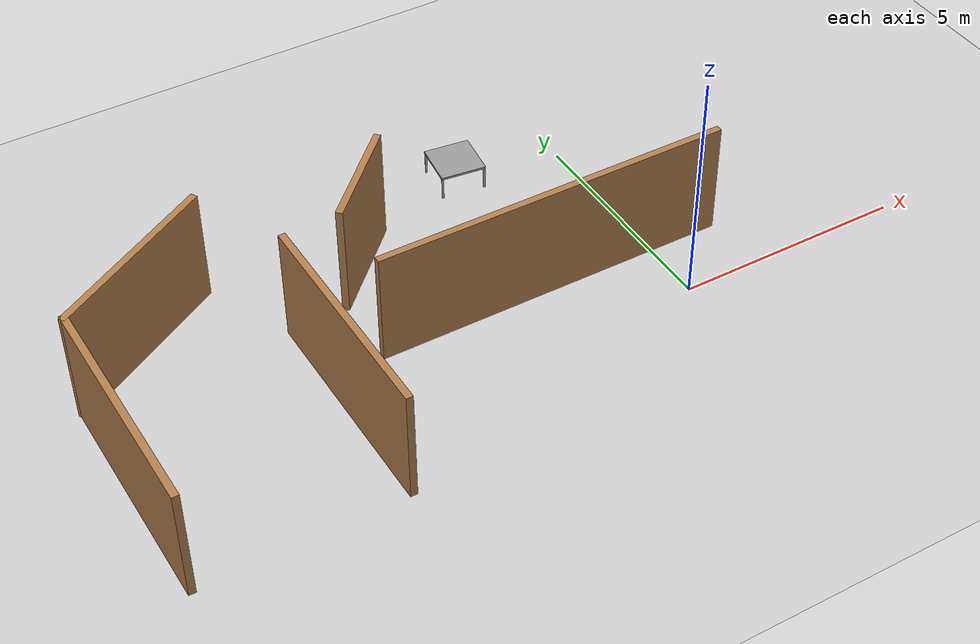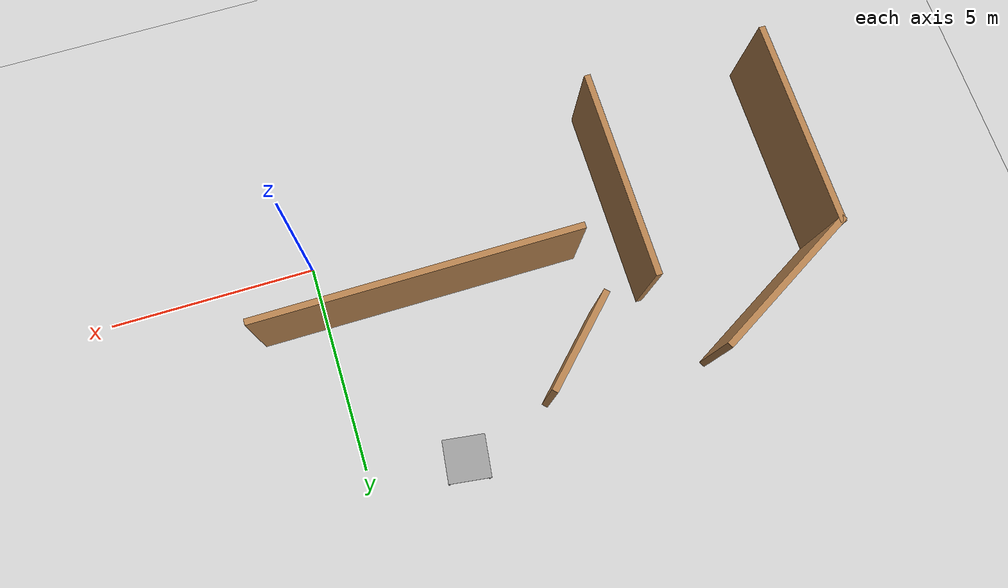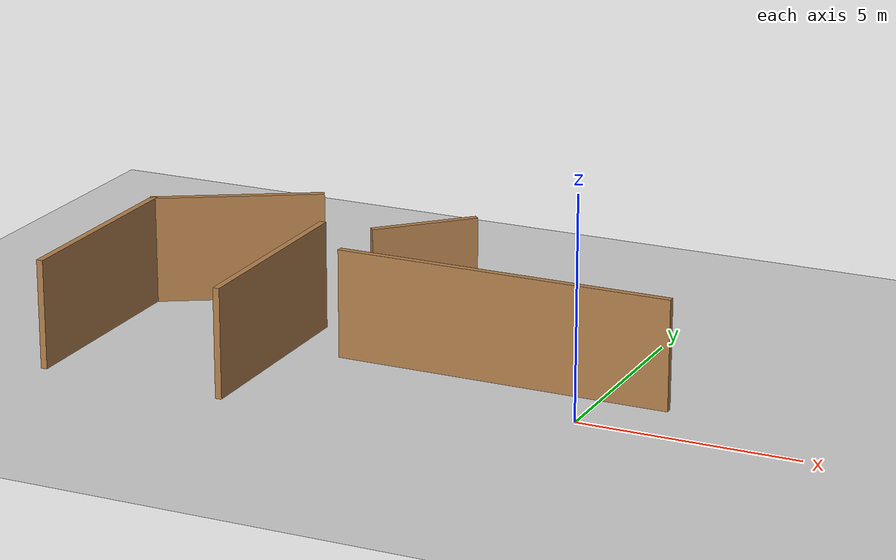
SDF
<sdf version="1.6">
 <world name="default">
  <model name="ground_plane">
   <static>1</static>
   <link name="link">
    <collision name="collision">
     <geometry><plane><normal>0 0 1</normal><size>100 100</size></plane></geometry>
     <surface><friction><ode><mu>100</mu><mu2>50</mu2></ode></friction></surface>
    </collision>
    <visual name="visual">
     <cast_shadows>0</cast_shadows>
     <geometry><plane><normal>0 0 1</normal><size>100 100</size></plane></geometry>
     <material>
      <script><uri>file://media/materials/scripts/gazebo.material</uri><name>Gazebo/Grey</name></script>
     </material>
    </visual>
   </link>
  </model>
  <model name="myTable">
   <link name="link_0">
    <pose>7.65666 6.42879 0.72 0 -0 0</pose>
    <inertial>
     <mass>1</mass>
     <inertia>
      <ixx>0.166667</ixx>
      <ixy>0</ixy>
      <ixz>0</ixz>
      <iyy>0.166667</iyy>
      <iyz>0</iyz>
      <izz>0.166667</izz>
     </inertia>
    </inertial>
    <visual name="visual">
     <geometry><box><size>1 1 0.05</size></box></geometry>
     <material>
      <lighting>1</lighting>
      <script><uri>file://media/materials/scripts/gazebo.material</uri><name>Gazebo/Grey</name></script>
      <ambient>0.3 0.3 0.3 1</ambient>
      <diffuse>0.7 0.7 0.7 1</diffuse>
      <specular>0.01 0.01 0.01 1</specular>
      <emissive>0 0 0 1</emissive>
      <shader type="vertex"><normal_map>__default__</normal_map></shader>
     </material>
    </visual>
    <collision name="collision">
     <geometry><box><size>1 1 0.05</size></box></geometry>
     <surface>
      <friction>
       <ode><mu>1</mu><mu2>1</mu2><fdir1>0 0 0</fdir1><slip1>0</slip1><slip2>0</slip2></ode>
       <torsional>
        <coefficient>1</coefficient>
        <patch_radius>0</patch_radius>
        <surface_radius>0</surface_radius>
        <use_patch_radius>1</use_patch_radius>
        <ode><slip>0</slip></ode>
       </torsional>
      </friction>
      <bounce><restitution_coefficient>0</restitution_coefficient><threshold>1e+06</threshold></bounce>
      <contact>
       <collide_without_contact>0</collide_without_contact>
       <collide_without_contact_bitmask>1</collide_without_contact_bitmask>
       <collide_bitmask>1</collide_bitmask>
       <ode>
        <soft_cfm>0</soft_cfm>
        <soft_erp>0.2</soft_erp>
        <kp>1e+13</kp>
        <kd>1</kd>
        <max_vel>0.01</max_vel>
        <min_depth>0</min_depth>
       </ode>
       <bullet>
        <split_impulse>1</split_impulse>
        <split_impulse_penetration_threshold>-0.01</split_impulse_penetration_threshold>
        <soft_cfm>0</soft_cfm>
        <soft_erp>0.2</soft_erp>
        <kp>1e+13</kp>
        <kd>1</kd>
       </bullet>
      </contact>
     </surface>
    </collision>
   </link>
   <link name="link_1">
    <pose>7.18166 5.95379 0.445 0 -0 0</pose>
    <inertial>
     <mass>1</mass>
     <inertia><ixx>0.145833</ixx><ixy>0</ixy><ixz>0</ixz><iyy>0.145833</iyy><iyz>0</iyz><izz>0.125</izz></inertia>
    </inertial>
    <visual name="visual">
     <geometry><cylinder><radius>0.025</radius><length>0.5</length></cylinder></geometry>
     <material>
      <lighting>1</lighting>
      <script><uri>file://media/materials/scripts/gazebo.material</uri><name>Gazebo/Grey</name></script>
      <ambient>0.3 0.3 0.3 1</ambient>
      <diffuse>0.7 0.7 0.7 1</diffuse>
      <specular>0.01 0.01 0.01 1</specular>
      <emissive>0 0 0 1</emissive>
      <shader type="vertex"><normal_map>__default__</normal_map></shader>
     </material>
    </visual>
    <collision name="collision">
     <geometry><cylinder><radius>0.025</radius><length>0.5</length></cylinder></geometry>
     <surface>
      <friction>
       <ode><mu>1</mu><mu2>1</mu2><fdir1>0 0 0</fdir1><slip1>0</slip1><slip2>0</slip2></ode>
       <torsional>
        <coefficient>1</coefficient>
        <patch_radius>0</patch_radius>
        <surface_radius>0</surface_radius>
        <use_patch_radius>1</use_patch_radius>
        <ode><slip>0</slip></ode>
       </torsional>
      </friction>
      <bounce><restitution_coefficient>0</restitution_coefficient><threshold>1e+06</threshold></bounce>
      <contact>
       <collide_without_contact>0</collide_without_contact>
       <collide_without_contact_bitmask>1</collide_without_contact_bitmask>
       <collide_bitmask>1</collide_bitmask>
       <ode>
        <soft_cfm>0</soft_cfm>
        <soft_erp>0.2</soft_erp>
        <kp>1e+13</kp>
        <kd>1</kd>
        <max_vel>0.01</max_vel>
        <min_depth>0</min_depth>
       </ode>
       <bullet>
        <split_impulse>1</split_impulse>
        <split_impulse_penetration_threshold>-0.01</split_impulse_penetration_threshold>
        <soft_cfm>0</soft_cfm>
        <soft_erp>0.2</soft_erp>
        <kp>1e+13</kp>
        <kd>1</kd>
       </bullet>
      </contact>
     </surface>
    </collision>
   </link>
   <link name="link_1_clone">
    <pose>7.18166 6.90379 0.445 0 -0 0</pose>
    <inertial>
     <mass>1</mass>
     <inertia><ixx>0.145833</ixx><ixy>0</ixy><ixz>0</ixz><iyy>0.145833</iyy><iyz>0</iyz><izz>0.125</izz></inertia>
    </inertial>
    <visual name="visual">
     <geometry><cylinder><radius>0.025</radius><length>0.5</length></cylinder></geometry>
     <material>
      <lighting>1</lighting>
      <script><uri>file://media/materials/scripts/gazebo.material</uri><name>Gazebo/Grey</name></script>
      <ambient>0.3 0.3 0.3 1</ambient>
      <diffuse>0.7 0.7 0.7 1</diffuse>
      <specular>0.01 0.01 0.01 1</specular>
      <emissive>0 0 0 1</emissive>
      <shader type="vertex"><normal_map>__default__</normal_map></shader>
     </material>
    </visual>
    <collision name="collision">
     <geometry><cylinder><radius>0.025</radius><length>0.5</length></cylinder></geometry>
     <surface>
      <friction>
       <ode><mu>1</mu><mu2>1</mu2><fdir1>0 0 0</fdir1><slip1>0</slip1><slip2>0</slip2></ode>
       <torsional>
        <coefficient>1</coefficient>
        <patch_radius>0</patch_radius>
        <surface_radius>0</surface_radius>
        <use_patch_radius>1</use_patch_radius>
        <ode><slip>0</slip></ode>
       </torsional>
      </friction>
      <bounce><restitution_coefficient>0</restitution_coefficient><threshold>1e+06</threshold></bounce>
      <contact>
       <collide_without_contact>0</collide_without_contact>
       <collide_without_contact_bitmask>1</collide_without_contact_bitmask>
       <collide_bitmask>1</collide_bitmask>
       <ode>
        <soft_cfm>0</soft_cfm>
        <soft_erp>0.2</soft_erp>
        <kp>1e+13</kp>
        <kd>1</kd>
        <max_vel>0.01</max_vel>
        <min_depth>0</min_depth>
       </ode>
       <bullet>
        <split_impulse>1</split_impulse>
        <split_impulse_penetration_threshold>-0.01</split_impulse_penetration_threshold>
        <soft_cfm>0</soft_cfm>
        <soft_erp>0.2</soft_erp>
        <kp>1e+13</kp>
        <kd>1</kd>
       </bullet>
      </contact>
     </surface>
    </collision>
   </link>
   <link name="link_1_clone_0">
    <pose>8.13166 6.90379 0.445 0 -0 0</pose>
    <inertial>
     <mass>1</mass>
     <inertia><ixx>0.145833</ixx><ixy>0</ixy><ixz>0</ixz><iyy>0.145833</iyy><iyz>0</iyz><izz>0.125</izz></inertia>
    </inertial>
    <visual name="visual">
     <geometry><cylinder><radius>0.025</radius><length>0.5</length></cylinder></geometry>
     <material>
      <lighting>1</lighting>
      <script><uri>file://media/materials/scripts/gazebo.material</uri><name>Gazebo/Grey</name></script>
      <ambient>0.3 0.3 0.3 1</ambient>
      <diffuse>0.7 0.7 0.7 1</diffuse>
      <specular>0.01 0.01 0.01 1</specular>
      <emissive>0 0 0 1</emissive>
      <shader type="vertex"><normal_map>__default__</normal_map></shader>
     </material>
    </visual>
    <collision name="collision">
     <geometry><cylinder><radius>0.025</radius><length>0.5</length></cylinder></geometry>
     <surface>
      <friction>
       <ode><mu>1</mu><mu2>1</mu2><fdir1>0 0 0</fdir1><slip1>0</slip1><slip2>0</slip2></ode>
       <torsional>
        <coefficient>1</coefficient>
        <patch_radius>0</patch_radius>
        <surface_radius>0</surface_radius>
        <use_patch_radius>1</use_patch_radius>
        <ode><slip>0</slip></ode>
       </torsional>
      </friction>
      <bounce><restitution_coefficient>0</restitution_coefficient><threshold>1e+06</threshold></bounce>
      <contact>
       <collide_without_contact>0</collide_without_contact>
       <collide_without_contact_bitmask>1</collide_without_contact_bitmask>
       <collide_bitmask>1</collide_bitmask>
       <ode>
        <soft_cfm>0</soft_cfm>
        <soft_erp>0.2</soft_erp>
        <kp>1e+13</kp>
        <kd>1</kd>
        <max_vel>0.01</max_vel>
        <min_depth>0</min_depth>
       </ode>
       <bullet>
        <split_impulse>1</split_impulse>
        <split_impulse_penetration_threshold>-0.01</split_impulse_penetration_threshold>
        <soft_cfm>0</soft_cfm>
        <soft_erp>0.2</soft_erp>
        <kp>1e+13</kp>
        <kd>1</kd>
       </bullet>
      </contact>
     </surface>
    </collision>
   </link>
   <link name="link_1_clone_1">
    <pose>8.13166 5.95379 0.445 0 -0 0</pose>
    <inertial>
     <mass>1</mass>
     <inertia><ixx>0.145833</ixx><ixy>0</ixy><ixz>0</ixz><iyy>0.145833</iyy><iyz>0</iyz><izz>0.125</izz></inertia>
    </inertial>
    <visual name="visual">
     <geometry><cylinder><radius>0.025</radius><length>0.5</length></cylinder></geometry>
     <material>
      <lighting>1</lighting>
      <script><uri>file://media/materials/scripts/gazebo.material</uri><name>Gazebo/Grey</name></script>
      <ambient>0.3 0.3 0.3 1</ambient>
      <diffuse>0.7 0.7 0.7 1</diffuse>
      <specular>0.01 0.01 0.01 1</specular>
      <emissive>0 0 0 1</emissive>
      <shader type="vertex"><normal_map>__default__</normal_map></shader>
     </material>
    </visual>
    <collision name="collision">
     <geometry><cylinder><radius>0.025</radius><length>0.5</length></cylinder></geometry>
     <surface>
      <friction>
       <ode><mu>1</mu><mu2>1</mu2><fdir1>0 0 0</fdir1><slip1>0</slip1><slip2>0</slip2></ode>
       <torsional>
        <coefficient>1</coefficient>
        <patch_radius>0</patch_radius>
        <surface_radius>0</surface_radius>
        <use_patch_radius>1</use_patch_radius>
        <ode><slip>0</slip></ode>
       </torsional>
      </friction>
      <bounce><restitution_coefficient>0</restitution_coefficient><threshold>1e+06</threshold></bounce>
      <contact>
       <collide_without_contact>0</collide_without_contact>
       <collide_without_contact_bitmask>1</collide_without_contact_bitmask>
       <collide_bitmask>1</collide_bitmask>
       <ode>
        <soft_cfm>0</soft_cfm>
        <soft_erp>0.2</soft_erp>
        <kp>1e+13</kp>
        <kd>1</kd>
        <max_vel>0.01</max_vel>
        <min_depth>0</min_depth>
       </ode>
       <bullet>
        <split_impulse>1</split_impulse>
        <split_impulse_penetration_threshold>-0.01</split_impulse_penetration_threshold>
        <soft_cfm>0</soft_cfm>
        <soft_erp>0.2</soft_erp>
        <kp>1e+13</kp>
        <kd>1</kd>
       </bullet>
      </contact>
     </surface>
    </collision>
   </link>
   <joint name="link_0_JOINT_0" type="fixed">
    <parent>link_0</parent>
    <child>link_1</child>
    <physics>
     <ode><limit><cfm>0</cfm><erp>0.2</erp></limit><suspension><cfm>0</cfm><erp>0.2</erp></suspension></ode>
    </physics>
   </joint>
   <joint name="link_0_JOINT_1" type="fixed">
    <parent>link_0</parent>
    <child>link_1_clone_1</child>
    <physics>
     <ode><limit><cfm>0</cfm><erp>0.2</erp></limit><suspension><cfm>0</cfm><erp>0.2</erp></suspension></ode>
    </physics>
   </joint>
   <joint name="link_0_JOINT_2" type="revolute">
    <parent>link_0</parent>
    <child>link_1_clone</child>
    <axis>
     <xyz>1 0 0</xyz>
     <use_parent_model_frame>0</use_parent_model_frame>
     <limit>
      <lower>-1.79769e+308</lower>
      <upper>1.79769e+308</upper>
      <effort>-1</effort>
      <velocity>-1</velocity>
     </limit>
     <dynamics>
      <spring_reference>0</spring_reference>
      <spring_stiffness>0</spring_stiffness>
      <damping>0</damping>
     </dynamics>
    </axis>
    <physics>
     <ode><limit><cfm>0</cfm><erp>0.2</erp></limit><suspension><cfm>0</cfm><erp>0.2</erp></suspension></ode>
    </physics>
   </joint>
   <joint name="link_0_JOINT_3" type="fixed">
    <parent>link_0</parent>
    <child>link_1_clone_0</child>
    <physics>
     <ode><limit><cfm>0</cfm><erp>0.2</erp></limit><suspension><cfm>0</cfm><erp>0.2</erp></suspension></ode>
    </physics>
   </joint>
   <static>0</static>
   <pose>-10.7038 0.041584 -0.19501 1.2e-05 9e-06 -0.126885</pose>
  </model>
  <model name="myHouse">
   <link name="Wall_14">
    <pose>-8.96215 -5.57611 0 0 -0 1.5708</pose>
    <visual name="Wall_14_Visual">
     <pose>0 0 1.25 0 -0 0</pose>
     <geometry><box><size>5 0.15 2.5</size></box></geometry>
     <material>
      <script><uri>file://media/materials/scripts/gazebo.material</uri><name>Gazebo/Wood</name></script>
      <ambient>1 1 1 1</ambient>
      <diffuse>1 1 1 1</diffuse>
      <specular>0.2 0.2 0.2 1</specular>
      <emissive>0 0 0 1</emissive>
      <shader type="pixel"/>
     </material>
     <meta><layer>0</layer></meta>
    </visual>
    <collision name="Wall_14_Collision">
     <pose>0 0 1.25 0 -0 0</pose>
     <geometry><box><size>5 0.15 2.5</size></box></geometry>
     <surface>
      <friction>
       <ode><mu>1</mu><mu2>1</mu2><fdir1>0 0 0</fdir1><slip1>0</slip1><slip2>0</slip2></ode>
       <torsional>
        <coefficient>1</coefficient>
        <patch_radius>0</patch_radius>
        <surface_radius>0</surface_radius>
        <use_patch_radius>1</use_patch_radius>
        <ode><slip>0</slip></ode>
       </torsional>
      </friction>
      <bounce><restitution_coefficient>0</restitution_coefficient><threshold>1e+06</threshold></bounce>
      <contact>
       <collide_without_contact>0</collide_without_contact>
       <collide_without_contact_bitmask>1</collide_without_contact_bitmask>
       <collide_bitmask>1</collide_bitmask>
       <ode>
        <soft_cfm>0</soft_cfm>
        <soft_erp>0.2</soft_erp>
        <kp>1e+13</kp>
        <kd>1</kd>
        <max_vel>0.01</max_vel>
        <min_depth>0</min_depth>
       </ode>
       <bullet>
        <split_impulse>1</split_impulse>
        <split_impulse_penetration_threshold>-0.01</split_impulse_penetration_threshold>
        <soft_cfm>0</soft_cfm>
        <soft_erp>0.2</soft_erp>
        <kp>1e+13</kp>
        <kd>1</kd>
       </bullet>
      </contact>
     </surface>
    </collision>
   </link>
   <link name="Wall_19">
    <pose>-7.29505 -2.18861 0 0 -0 0.523599</pose>
    <visual name="Wall_19_Visual">
     <pose>0 0 1.25 0 -0 0</pose>
     <geometry><box><size>4 0.15 2.5</size></box></geometry>
     <material>
      <script><uri>file://media/materials/scripts/gazebo.material</uri><name>Gazebo/Wood</name></script>
      <ambient>1 1 1 1</ambient>
      <diffuse>1 1 1 1</diffuse>
      <specular>0.2 0.2 0.2 1</specular>
      <emissive>0 0 0 1</emissive>
      <shader type="pixel"/>
     </material>
     <meta><layer>0</layer></meta>
    </visual>
    <collision name="Wall_19_Collision">
     <pose>0 0 1.25 0 -0 0</pose>
     <geometry><box><size>4 0.15 2.5</size></box></geometry>
     <surface>
      <friction>
       <ode><mu>1</mu><mu2>1</mu2><fdir1>0 0 0</fdir1><slip1>0</slip1><slip2>0</slip2></ode>
       <torsional>
        <coefficient>1</coefficient>
        <patch_radius>0</patch_radius>
        <surface_radius>0</surface_radius>
        <use_patch_radius>1</use_patch_radius>
        <ode><slip>0</slip></ode>
       </torsional>
      </friction>
      <bounce><restitution_coefficient>0</restitution_coefficient><threshold>1e+06</threshold></bounce>
      <contact>
       <collide_without_contact>0</collide_without_contact>
       <collide_without_contact_bitmask>1</collide_without_contact_bitmask>
       <collide_bitmask>1</collide_bitmask>
       <ode>
        <soft_cfm>0</soft_cfm>
        <soft_erp>0.2</soft_erp>
        <kp>1e+13</kp>
        <kd>1</kd>
        <max_vel>0.01</max_vel>
        <min_depth>0</min_depth>
       </ode>
       <bullet>
        <split_impulse>1</split_impulse>
        <split_impulse_penetration_threshold>-0.01</split_impulse_penetration_threshold>
        <soft_cfm>0</soft_cfm>
        <soft_erp>0.2</soft_erp>
        <kp>1e+13</kp>
        <kd>1</kd>
       </bullet>
      </contact>
     </surface>
    </collision>
   </link>
   <link name="Wall_24">
    <pose>0.421746 -4.63234 0 0 -0 3.14159</pose>
    <visual name="Wall_24_Visual">
     <pose>0 0 1.25 0 -0 0</pose>
     <geometry><box><size>7.75 0.15 2.5</size></box></geometry>
     <material>
      <script><uri>file://media/materials/scripts/gazebo.material</uri><name>Gazebo/Wood</name></script>
      <ambient>1 1 1 1</ambient>
      <diffuse>1 1 1 1</diffuse>
      <specular>0.2 0.2 0.2 1</specular>
      <emissive>0 0 0 1</emissive>
      <shader type="pixel"/>
     </material>
     <meta><layer>0</layer></meta>
    </visual>
    <collision name="Wall_24_Collision">
     <pose>0 0 1.25 0 -0 0</pose>
     <geometry><box><size>7.75 0.15 2.5</size></box></geometry>
     <surface>
      <friction>
       <ode><mu>1</mu><mu2>1</mu2><fdir1>0 0 0</fdir1><slip1>0</slip1><slip2>0</slip2></ode>
       <torsional>
        <coefficient>1</coefficient>
        <patch_radius>0</patch_radius>
        <surface_radius>0</surface_radius>
        <use_patch_radius>1</use_patch_radius>
        <ode><slip>0</slip></ode>
       </torsional>
      </friction>
      <bounce><restitution_coefficient>0</restitution_coefficient><threshold>1e+06</threshold></bounce>
      <contact>
       <collide_without_contact>0</collide_without_contact>
       <collide_without_contact_bitmask>1</collide_without_contact_bitmask>
       <collide_bitmask>1</collide_bitmask>
       <ode>
        <soft_cfm>0</soft_cfm>
        <soft_erp>0.2</soft_erp>
        <kp>1e+13</kp>
        <kd>1</kd>
        <max_vel>0.01</max_vel>
        <min_depth>0</min_depth>
       </ode>
       <bullet>
        <split_impulse>1</split_impulse>
        <split_impulse_penetration_threshold>-0.01</split_impulse_penetration_threshold>
        <soft_cfm>0</soft_cfm>
        <soft_erp>0.2</soft_erp>
        <kp>1e+13</kp>
        <kd>1</kd>
       </bullet>
      </contact>
     </surface>
    </collision>
   </link>
   <link name="Wall_26">
    <pose>-2.5474 -2.20148 0 0 -0 0.785398</pose>
    <visual name="Wall_26_Visual">
     <pose>0 0 1.25 0 -0 0</pose>
     <geometry><box><size>2.5 0.15 2.5</size></box></geometry>
     <material>
      <script><uri>file://media/materials/scripts/gazebo.material</uri><name>Gazebo/Wood</name></script>
      <ambient>1 1 1 1</ambient>
      <diffuse>1 1 1 1</diffuse>
      <specular>0.2 0.2 0.2 1</specular>
      <emissive>0 0 0 1</emissive>
      <shader type="pixel"/>
     </material>
     <meta><layer>0</layer></meta>
    </visual>
    <collision name="Wall_26_Collision">
     <pose>0 0 1.25 0 -0 0</pose>
     <geometry><box><size>2.5 0.15 2.5</size></box></geometry>
     <surface>
      <friction>
       <ode><mu>1</mu><mu2>1</mu2><fdir1>0 0 0</fdir1><slip1>0</slip1><slip2>0</slip2></ode>
       <torsional>
        <coefficient>1</coefficient>
        <patch_radius>0</patch_radius>
        <surface_radius>0</surface_radius>
        <use_patch_radius>1</use_patch_radius>
        <ode><slip>0</slip></ode>
       </torsional>
      </friction>
      <bounce><restitution_coefficient>0</restitution_coefficient><threshold>1e+06</threshold></bounce>
      <contact>
       <collide_without_contact>0</collide_without_contact>
       <collide_without_contact_bitmask>1</collide_without_contact_bitmask>
       <collide_bitmask>1</collide_bitmask>
       <ode>
        <soft_cfm>0</soft_cfm>
        <soft_erp>0.2</soft_erp>
        <kp>1e+13</kp>
        <kd>1</kd>
        <max_vel>0.01</max_vel>
        <min_depth>0</min_depth>
       </ode>
       <bullet>
        <split_impulse>1</split_impulse>
        <split_impulse_penetration_threshold>-0.01</split_impulse_penetration_threshold>
        <soft_cfm>0</soft_cfm>
        <soft_erp>0.2</soft_erp>
        <kp>1e+13</kp>
        <kd>1</kd>
       </bullet>
      </contact>
     </surface>
    </collision>
   </link>
   <link name="Wall_8">
    <pose>-4.63765 -5.57272 0 0 -0 1.5708</pose>
    <visual name="Wall_8_Visual">
     <pose>0 0 1.25 0 -0 0</pose>
     <geometry><box><size>4.9737 0.15 2.5</size></box></geometry>
     <material>
      <script><uri>file://media/materials/scripts/gazebo.material</uri><name>Gazebo/Wood</name></script>
      <ambient>1 1 1 1</ambient>
      <diffuse>1 1 1 1</diffuse>
      <specular>0.2 0.2 0.2 1</specular>
      <emissive>0 0 0 1</emissive>
      <shader type="pixel"/>
     </material>
     <meta><layer>0</layer></meta>
    </visual>
    <collision name="Wall_8_Collision">
     <pose>0 0 1.25 0 -0 0</pose>
     <geometry><box><size>4.9737 0.15 2.5</size></box></geometry>
     <surface>
      <friction>
       <ode><mu>1</mu><mu2>1</mu2><fdir1>0 0 0</fdir1><slip1>0</slip1><slip2>0</slip2></ode>
       <torsional>
        <coefficient>1</coefficient>
        <patch_radius>0</patch_radius>
        <surface_radius>0</surface_radius>
        <use_patch_radius>1</use_patch_radius>
        <ode><slip>0</slip></ode>
       </torsional>
      </friction>
      <bounce><restitution_coefficient>0</restitution_coefficient><threshold>1e+06</threshold></bounce>
      <contact>
       <collide_without_contact>0</collide_without_contact>
       <collide_without_contact_bitmask>1</collide_without_contact_bitmask>
       <collide_bitmask>1</collide_bitmask>
       <ode>
        <soft_cfm>0</soft_cfm>
        <soft_erp>0.2</soft_erp>
        <kp>1e+13</kp>
        <kd>1</kd>
        <max_vel>0.01</max_vel>
        <min_depth>0</min_depth>
       </ode>
       <bullet>
        <split_impulse>1</split_impulse>
        <split_impulse_penetration_threshold>-0.01</split_impulse_penetration_threshold>
        <soft_cfm>0</soft_cfm>
        <soft_erp>0.2</soft_erp>
        <kp>1e+13</kp>
        <kd>1</kd>
       </bullet>
      </contact>
     </surface>
    </collision>
   </link>
   <static>1</static>
   <pose>-2.763 6.07954 0 0 -0 0</pose>
  </model>
 </world>
</sdf>
